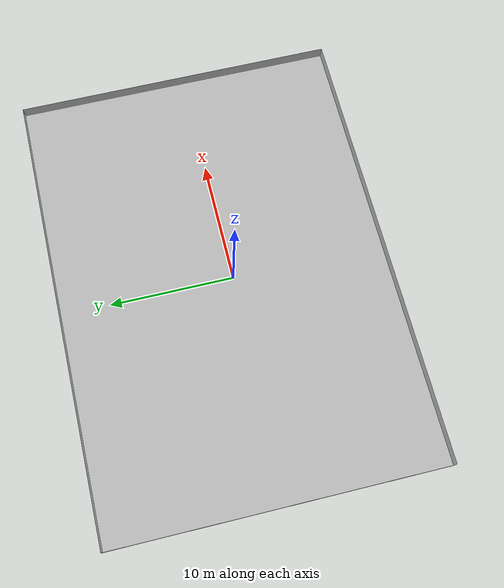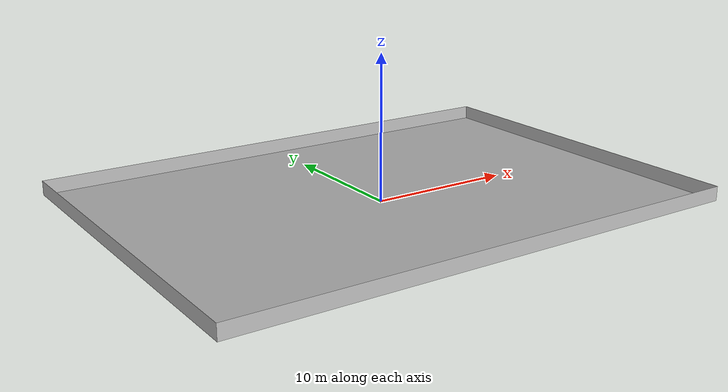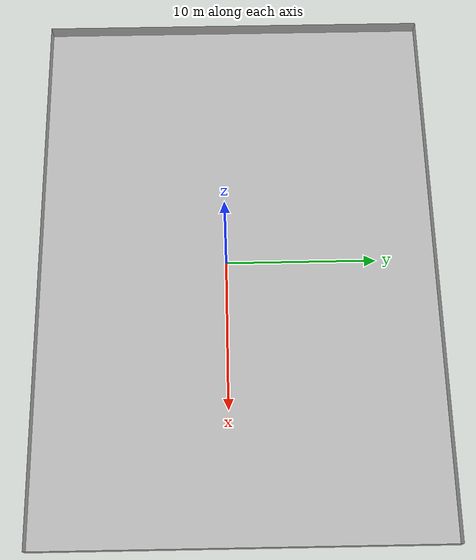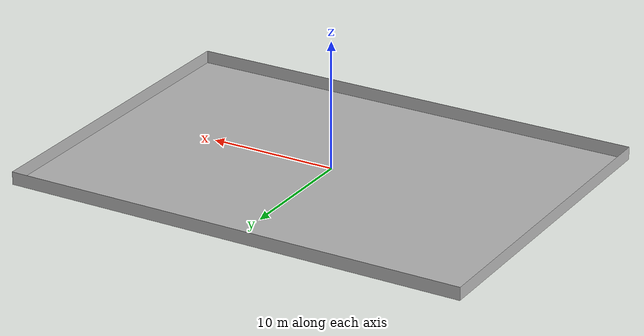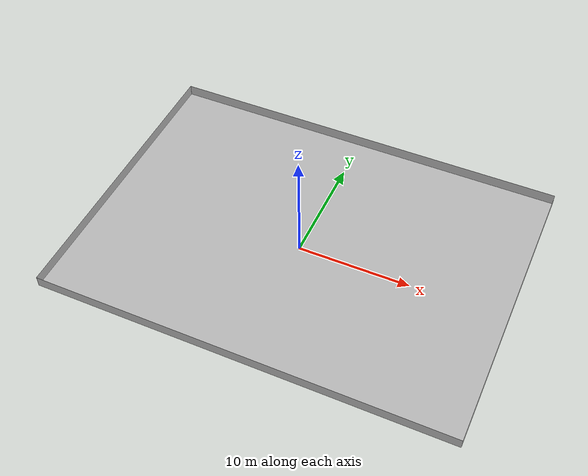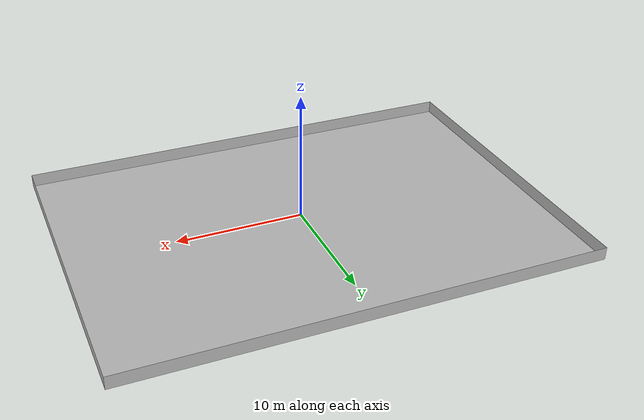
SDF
<?xml version="1.0"?>
<sdf version="1.4">
<world name="FS_June2020">
  <scene>
    <ambient>0.5 0.5 0.5 1.0</ambient>
    <shadows>0</shadows>
    <sky></sky>
  </scene>
  <include>
    <uri>model://sun</uri>
    <pose>0.0 0.0 15.0 0 0 0</pose>
    <cast_shadows>false</cast_shadows>
    <attenuation>
      <constant>0.5</constant>
      <linear>0.01</linear>
      <quadratic>0.0</quadratic>
      <range>100</range>
    </attenuation>
  </include>
  <light type="point" name="Light 1">
         <pose>0 0 15 0 0 0</pose>
         <diffuse>0.225 0.225 0.225 1</diffuse>
         <specular>.1 .1 .1 1</specular>
         <attenuation>
                <constant>0.4</constant>
                <linear>0.01</linear>
                <quadratic>0.00</quadratic>
                <range>50</range>
         </attenuation>
         <direction>0 0 -1</direction>
         <cast_shadows>false</cast_shadows>
  </light>
  <include>
    <uri>model://models/FS_June2020</uri>
    <pose>0 0 0 0 0 0</pose>
    <name>racetrack</name>
  </include>
</world>
</sdf>

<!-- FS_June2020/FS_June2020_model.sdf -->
<sdf version="1.4">
<model name="FS_June2020_track_model">
<link name="track">
<collision name="collision">
<pose>0 0 0 0 0 0</pose>
<geometry>
<mesh>
<uri>model://meshes/FS_June2020/FS_June2020_collisions.dae</uri>
</mesh>
</geometry>
</collision>
<visual name="visual">
<pose>0 0 0 0 0 0</pose>
<geometry>
<mesh>
<uri>model://meshes/FS_June2020/FS_June2020.dae</uri>
</mesh>
</geometry>
</visual>
</link>
<static>1</static>
</model>
</sdf>
